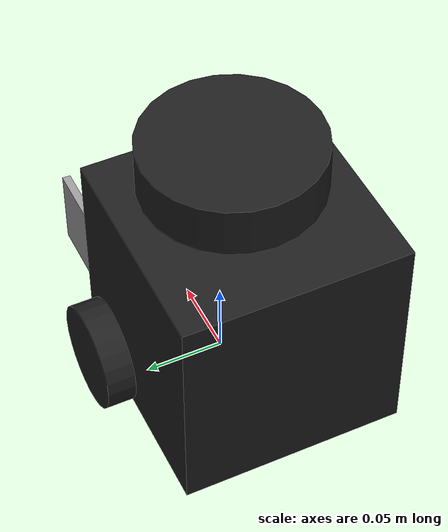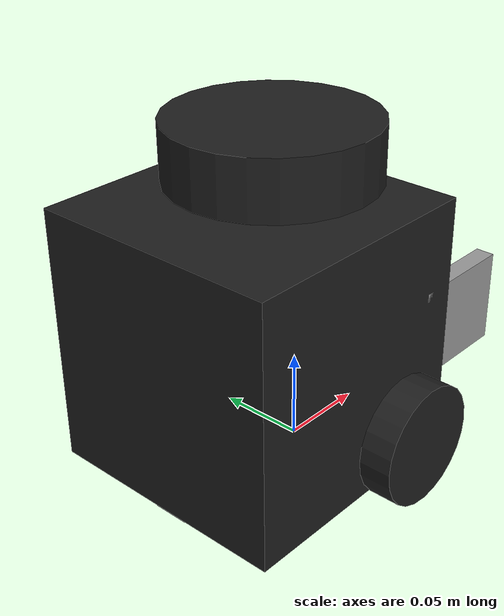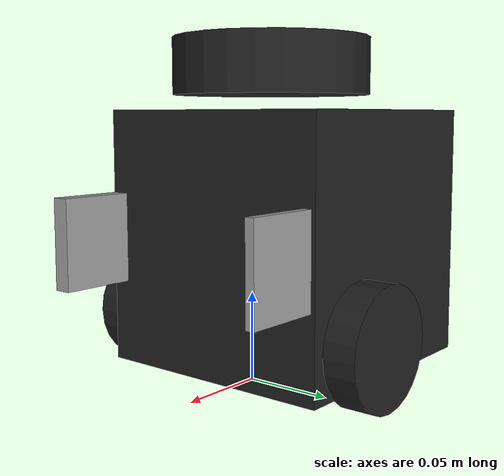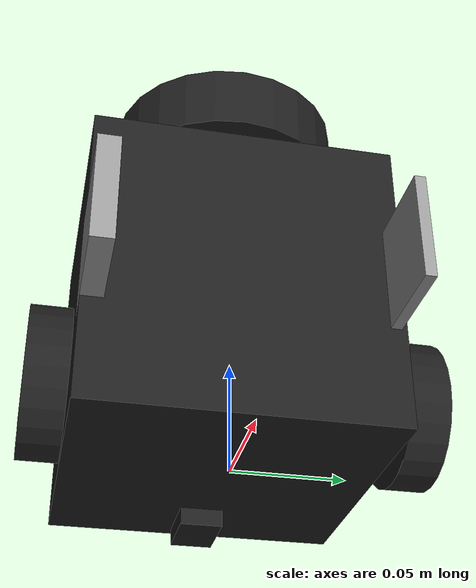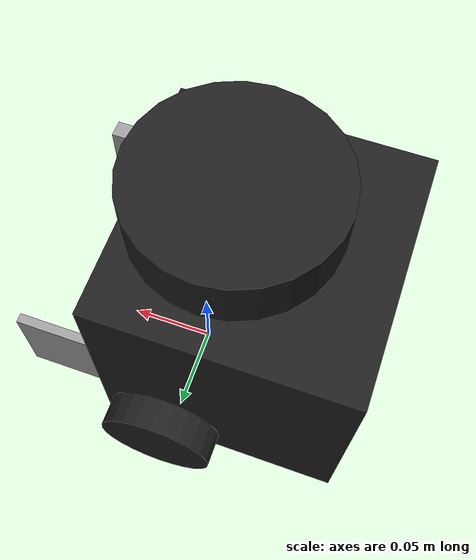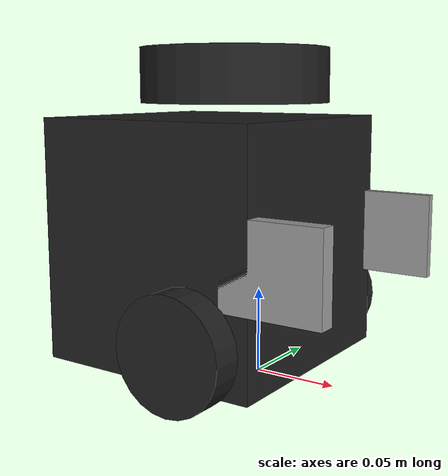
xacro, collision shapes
<?xml version="1.0" ?>
<robot name="turtlebot3_burger" xmlns:xacro="http://ros.org/wiki/xacro">
  <xacro:include filename="$(find turtlebot3_description)/urdf/common_properties.xacro"/>
  <xacro:include filename="$(find new_moveit_config)/my_turtlebot3/turtlebot3_burger_grip.gazebo.xacro"/>

  <link name="base_footprint"/>

  <joint name="base_joint" type="fixed">
    <parent link="base_footprint"/>
    <child link="base_link"/>
    <origin xyz="0.0 0.0 0.010" rpy="0 0 0"/>
  </joint>

  <link name="base_link">
    <visual>
      <origin xyz="-0.032 0 0.0" rpy="0 0 0"/>
      <geometry>
        <mesh filename="package://turtlebot3_description/meshes/bases/burger_base.stl" scale="0.001 0.001 0.001"/>
      </geometry>
      <material name="light_black"/>
    </visual>

    <collision>
      <origin xyz="-0.032 0 0.070" rpy="0 0 0"/>
      <geometry>
        <box size="0.140 0.140 0.143"/>
      </geometry>
    </collision>

    <inertial>
      <origin xyz="0 0 0" rpy="0 0 0"/>
      <mass value="8.2573504e-01"/>
      <inertia ixx="2.2124416e-03" ixy="-1.2294101e-05" ixz="3.4938785e-05"
               iyy="2.1193702e-03" iyz="-5.0120904e-06"
               izz="2.0064271e-03" />
    </inertial>
  </link>

  <joint name="wheel_left_joint" type="continuous">
    <parent link="base_link"/>
    <child link="wheel_left_link"/>
    <origin xyz="0.0 0.08 0.023" rpy="-1.57 0 0"/>
    <axis xyz="0 0 1"/>
  </joint>

  <link name="wheel_left_link">
    <visual>
      <origin xyz="0 0 0" rpy="1.57 0 0"/>
      <geometry>
        <mesh filename="package://turtlebot3_description/meshes/wheels/left_tire.stl" scale="0.001 0.001 0.001"/>
      </geometry>
      <material name="dark"/>
    </visual>

    <collision>
      <origin xyz="0 0 0" rpy="0 0 0"/>
      <geometry>
        <cylinder length="0.018" radius="0.033"/>
      </geometry>
    </collision>

    <inertial>
      <origin xyz="0 0 0" />
      <mass value="2.8498940e-02" />
      <inertia ixx="1.1175580e-05" ixy="-4.2369783e-11" ixz="-5.9381719e-09"
               iyy="1.1192413e-05" iyz="-1.4400107e-11"
               izz="2.0712558e-05" />
      </inertial>
  </link>

  <joint name="wheel_right_joint" type="continuous">
    <parent link="base_link"/>
    <child link="wheel_right_link"/>
    <origin xyz="0.0 -0.080 0.023" rpy="-1.57 0 0"/>
    <axis xyz="0 0 1"/>
  </joint>

  <link name="wheel_right_link">
    <visual>
      <origin xyz="0 0 0" rpy="1.57 0 0"/>
      <geometry>
        <mesh filename="package://turtlebot3_description/meshes/wheels/right_tire.stl" scale="0.001 0.001 0.001"/>
      </geometry>
      <material name="dark"/>
    </visual>

    <collision>
      <origin xyz="0 0 0" rpy="0 0 0"/>
      <geometry>
        <cylinder length="0.018" radius="0.033"/>
      </geometry>
    </collision>

    <inertial>
      <origin xyz="0 0 0" />
      <mass value="2.8498940e-02" />
      <inertia ixx="1.1175580e-05" ixy="-4.2369783e-11" ixz="-5.9381719e-09"
               iyy="1.1192413e-05" iyz="-1.4400107e-11"
               izz="2.0712558e-05" />
      </inertial>
  </link>

  <joint name="caster_back_joint" type="fixed">
    <parent link="base_link"/>
    <child link="caster_back_link"/>
    <origin xyz="-0.081 0 -0.004" rpy="-1.57 0 0"/>
  </joint>

  <link name="caster_back_link">
    <collision>
      <origin xyz="0 0.001 0" rpy="0 0 0"/>
      <geometry>
        <box size="0.030 0.009 0.020"/>
      </geometry>
    </collision>

    <inertial>
      <origin xyz="0 0 0" />
      <mass value="0.005" />
      <inertia ixx="0.001" ixy="0.0" ixz="0.0"
               iyy="0.001" iyz="0.0"
               izz="0.001" />
    </inertial>
  </link>

  <joint name="imu_joint" type="fixed">
    <parent link="base_link"/>
    <child link="imu_link"/>
    <origin xyz="-0.032 0 0.068" rpy="0 0 0"/>
  </joint>

  <link name="imu_link"/>

  <joint name="scan_joint" type="fixed">
    <parent link="base_link"/>
    <child link="base_scan"/>
    <origin xyz="-0.032 0 0.172" rpy="0 0 0"/>
  </joint>

  <link name="base_scan">
    <visual>
      <origin xyz="0 0 0.0" rpy="0 0 0"/>
      <geometry>
        <mesh filename="package://turtlebot3_description/meshes/sensors/lds.stl" scale="0.001 0.001 0.001"/>
      </geometry>
      <material name="dark"/>
    </visual>

    <collision>
      <origin xyz="0.015 0 -0.0065" rpy="0 0 0"/>
      <geometry>
        <cylinder length="0.0315" radius="0.055"/>
      </geometry>
    </collision>

    <inertial>
      <mass value="0.114" />
      <origin xyz="0 0 0" />
      <inertia ixx="0.001" ixy="0.0" ixz="0.0"
               iyy="0.001" iyz="0.0"
               izz="0.001" />
    </inertial>
  </link>

  <link name="grip1_link">

      <visual>
          <origin rpy="0 0 0" xyz="0 0 0"/>
          <geometry>
              <box size="0.06 0.005 0.05"/>
          </geometry>
          <material name="grey"/>
      </visual>

      <collision>
          <origin xyz="0 0 0" rpy="0 0 0"/>
          <geometry>
              <box size="0.06 0.01 0.05"/>
          </geometry>
      </collision>

      <inertial>
          <origin xyz="0 0 0" rpy="0 0 0"/>
          <mass value="0.00001" />
          <inertia ixx="1.0" ixy="0.0" ixz="0.0" iyy="1.0" iyz="0.0" izz="1"/>
      </inertial>

  </link>

  <joint name="grip1_link" type="fixed">
      <parent link="base_link"/>
      <child link="grip1_link"/>
      <origin xyz="0.05 -0.065 0.07" rpy="0 0 0"/>
      <axis xyz="0 1 0"/>
  </joint>

 <link name="grip2_link">

      <visual>
          <origin rpy="0 0 0" xyz="0 0 0"/>
          <geometry>
              <box size="0.06 0.01 0.05"/>
          </geometry>
          <material name="grey"/>
      </visual>

      <collision>
          <origin xyz="0 0 0" rpy="0 0 0"/>
          <geometry>
              <box size="0.06 0.005 0.05"/>
          </geometry>
      </collision>

      <inertial>
          <origin xyz="0 0 0" rpy="0 0 0"/>
          <mass value="0.00001" />
          <inertia ixx="1.0" ixy="0.0" ixz="0.0" iyy="1.0" iyz="0.0" izz="1"/>
      </inertial>

  </link>

  <joint name="grip2_link" type="fixed">
    <parent link="base_link"/>
    <child link="grip2_link"/>
    <origin xyz="0.05 0.065 0.07" rpy="0 0 0"/>
    <axis xyz="0 1 0"/>
  </joint> -->

</robot>
